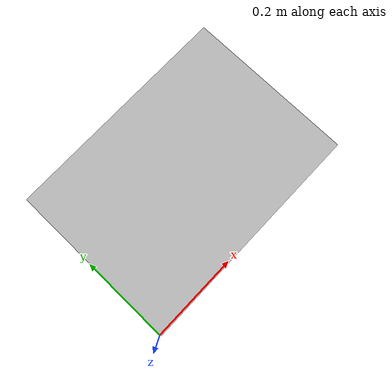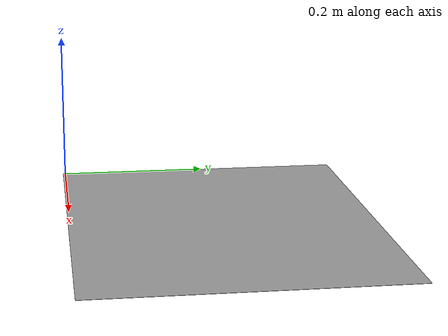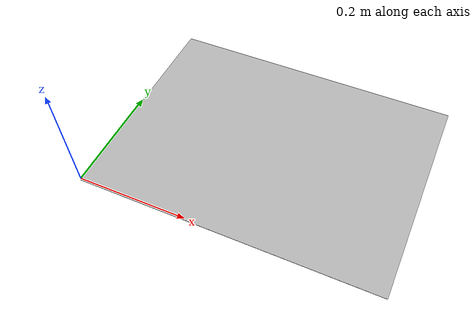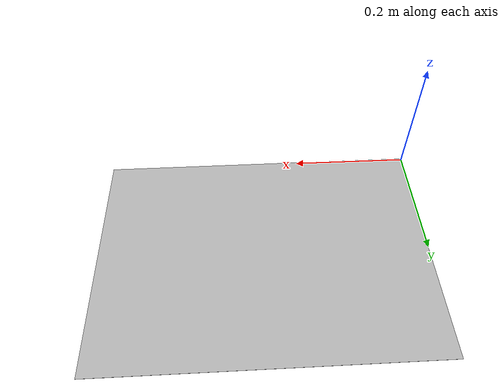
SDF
<sdf version="1.6">
 <world name="default">
  <light name="sun" type="directional">
   <cast_shadows>0</cast_shadows>
   <pose>0 0 10 0 -0 0</pose>
   <diffuse>0.8 0.8 0.8 1</diffuse>
   <specular>0.1 0.1 0.1 1</specular>
   <attenuation>
    <range>1000</range>
    <constant>0.9</constant>
    <linear>0.01</linear>
    <quadratic>0.001</quadratic>
   </attenuation>
   <direction>-0.5 0.5 -1</direction>
  </light>
  <gravity>0 0 -9.8</gravity>
  <magnetic_field>6e-06 2.3e-05 -4.2e-05</magnetic_field>
  <atmosphere type="adiabatic"/>
  <physics name="default_physics" default="0" type="ode">
   <max_step_size>0.001</max_step_size>
   <real_time_factor>1</real_time_factor>
   <real_time_update_rate>1000</real_time_update_rate>
  </physics>
  <scene><ambient>0.4 0.4 0.4 1</ambient><background>0.7 0.7 0.7 1</background><shadows>0</shadows></scene>
  <spherical_coordinates>
   <surface_model>EARTH_WGS84</surface_model>
   <latitude_deg>0</latitude_deg>
   <longitude_deg>0</longitude_deg>
   <elevation>0</elevation>
   <heading_deg>0</heading_deg>
  </spherical_coordinates>
  <model name="gridworld_project_just_mapping">
   <static>1</static>
   <link name="link">
    <pose>0.75 0.457 0 0 -0 0</pose>
    <collision name="collision">
     <geometry><plane><normal>0 0 1</normal><size>0.541 0.394</size></plane></geometry>
     <surface><friction><ode><mu>100</mu><mu2>50</mu2></ode></friction></surface>
    </collision>
    <visual name="visual">
     <cast_shadows>0</cast_shadows>
     <geometry><plane><normal>0 0 1</normal><size>0.541 0.394</size></plane></geometry>
     <material>
      <script>
       <uri>model://gridworld_project_just_mapping/materials/gridworld.material</uri>
       <name>GridworldProjectJustMapping/Image</name>
      </script>
     </material>
    </visual>
   </link>
   <pose>-0.478878 -0.262927 0 0 -0 0</pose>
  </model>
 </world>
</sdf>
